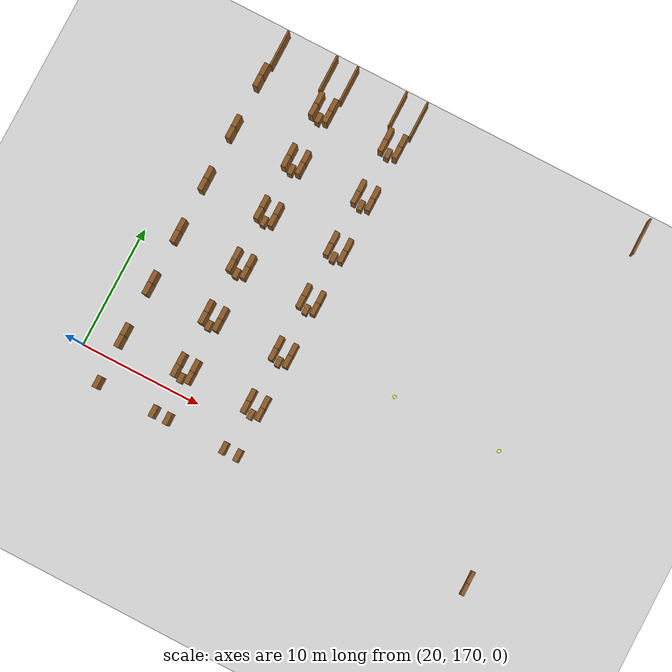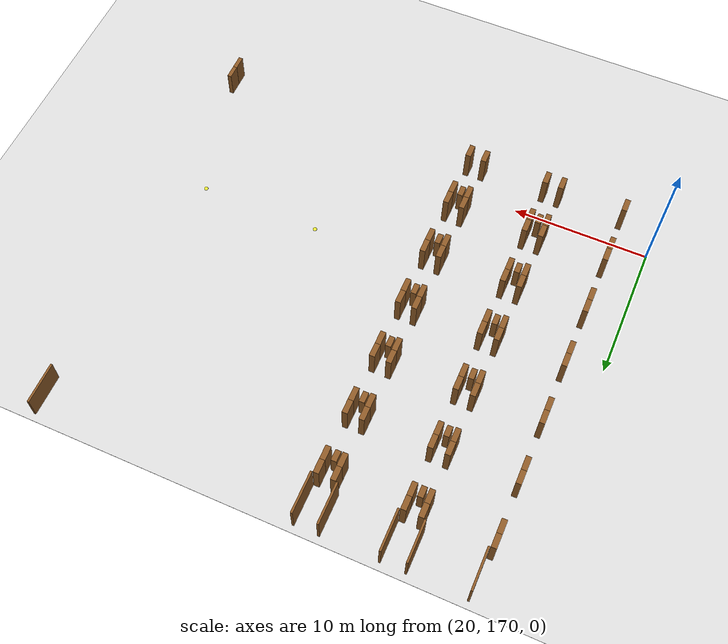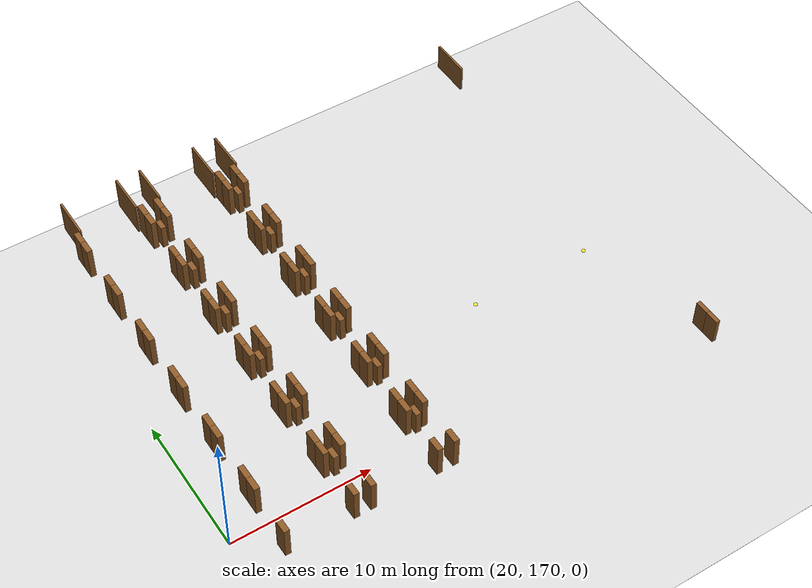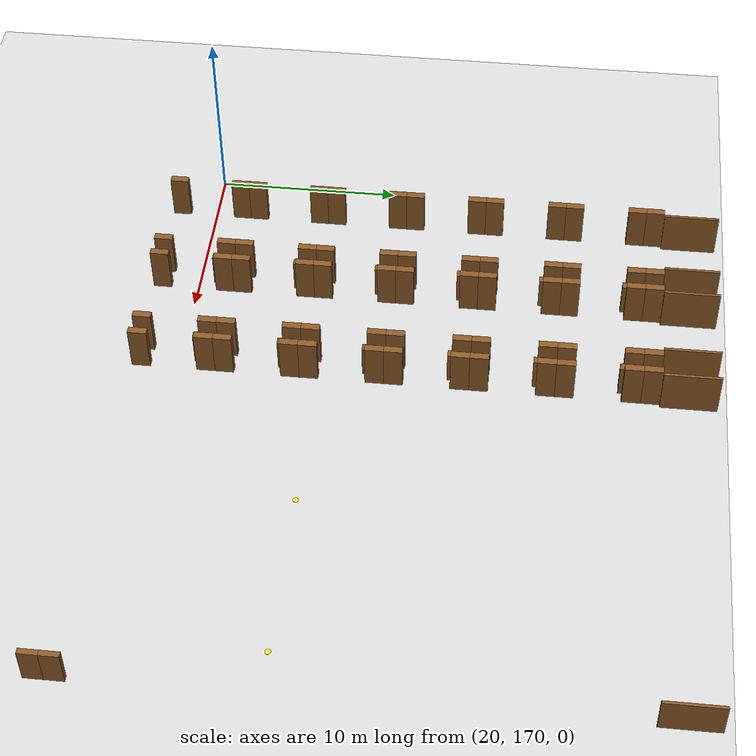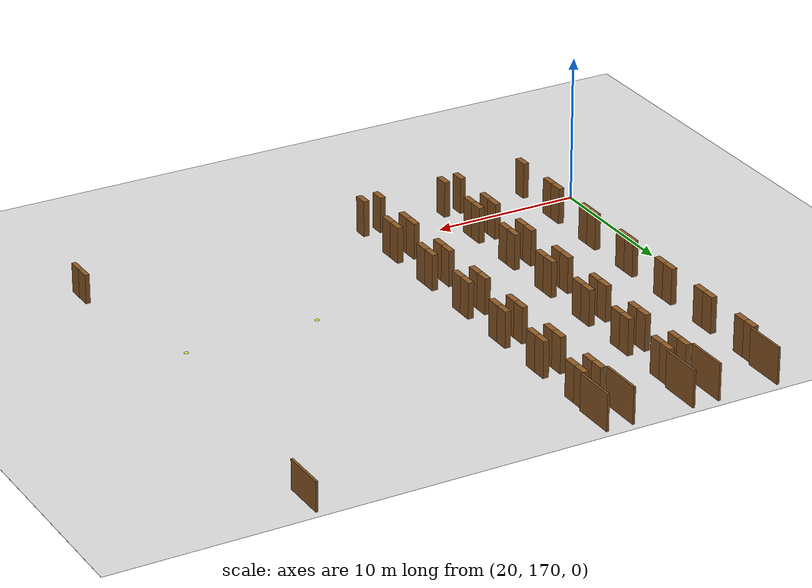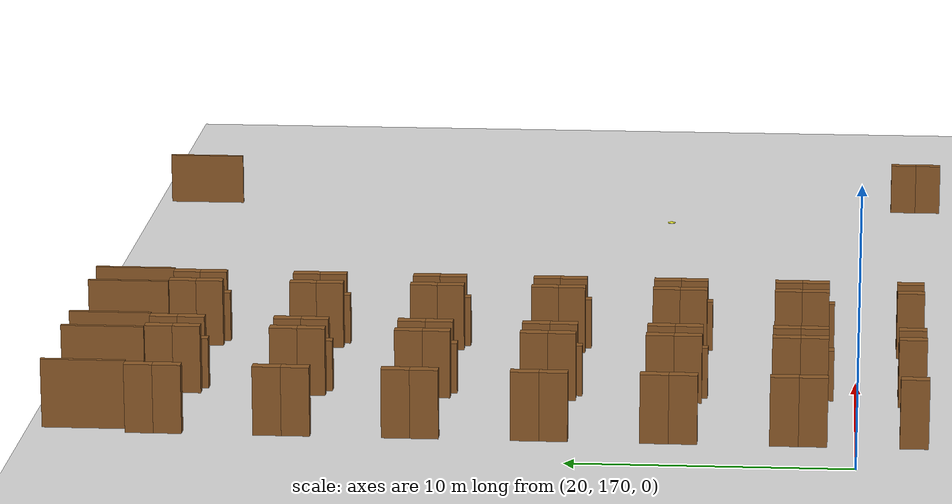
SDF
<sdf version="1.9">
 <world name="realistic_warehouse_150x200m">
  <model name="ground_plane">
   <static>true</static>
   <pose>68.5 102.0 0 0 0 0</pose>
   <link name="ground_link">
    <visual name="ground_visual">
     <geometry><box><size>127.0 194.0 0.01</size></box></geometry>
     <material><ambient>0.85 0.85 0.85 1.0</ambient><diffuse>0.85 0.85 0.85 1.0</diffuse></material>
    </visual>
    <collision name="ground_visual_collision">
     <geometry><box><size>127.0 194.0 0.01</size></box></geometry>
    </collision>
    <collision name="ground_collision">
     <geometry><plane><normal>0 0 1</normal><size>127.0 194.0</size></plane></geometry>
    </collision>
   </link>
  </model>
  <model name="rack_Zone_A_A2_S1_104">
   <static>true</static>
   <pose>22.6 168.0 1.25 0 0 0</pose>
   <link name="rack_Zone_A_A2_S1_104_link">
    <visual name="rack_Zone_A_A2_S1_104_vis">
     <geometry><box><size>0.4 1.0 2.5</size></box></geometry>
     <material><ambient>0.55 0.35 0.15 1.0</ambient><diffuse>0.55 0.35 0.15 1.0</diffuse></material>
    </visual>
    <collision name="rack_Zone_A_A2_S1_104_vis_collision">
     <geometry><box><size>0.4 1.0 2.5</size></box></geometry>
    </collision>
   </link>
  </model>
  <model name="rack_Zone_A_A2_S2_108">
   <static>true</static>
   <pose>22.6 171.5 1.25 0 0 0</pose>
   <link name="rack_Zone_A_A2_S2_108_link">
    <visual name="rack_Zone_A_A2_S2_108_vis">
     <geometry><box><size>0.4 1.0 2.5</size></box></geometry>
     <material><ambient>0.55 0.35 0.15 1.0</ambient><diffuse>0.55 0.35 0.15 1.0</diffuse></material>
    </visual>
    <collision name="rack_Zone_A_A2_S2_108_vis_collision">
     <geometry><box><size>0.4 1.0 2.5</size></box></geometry>
    </collision>
   </link>
  </model>
  <model name="rack_Zone_A_A2_S2_109">
   <static>true</static>
   <pose>22.6 172.5 1.25 0 0 0</pose>
   <link name="rack_Zone_A_A2_S2_109_link">
    <visual name="rack_Zone_A_A2_S2_109_vis">
     <geometry><box><size>0.4 1.0 2.5</size></box></geometry>
     <material><ambient>0.55 0.35 0.15 1.0</ambient><diffuse>0.55 0.35 0.15 1.0</diffuse></material>
    </visual>
    <collision name="rack_Zone_A_A2_S2_109_vis_collision">
     <geometry><box><size>0.4 1.0 2.5</size></box></geometry>
    </collision>
   </link>
  </model>
  <model name="rack_Zone_A_A2_S3_113">
   <static>true</static>
   <pose>22.6 176.0 1.25 0 0 0</pose>
   <link name="rack_Zone_A_A2_S3_113_link">
    <visual name="rack_Zone_A_A2_S3_113_vis">
     <geometry><box><size>0.4 1.0 2.5</size></box></geometry>
     <material><ambient>0.55 0.35 0.15 1.0</ambient><diffuse>0.55 0.35 0.15 1.0</diffuse></material>
    </visual>
    <collision name="rack_Zone_A_A2_S3_113_vis_collision">
     <geometry><box><size>0.4 1.0 2.5</size></box></geometry>
    </collision>
   </link>
  </model>
  <model name="rack_Zone_A_A2_S3_114">
   <static>true</static>
   <pose>22.6 177.0 1.25 0 0 0</pose>
   <link name="rack_Zone_A_A2_S3_114_link">
    <visual name="rack_Zone_A_A2_S3_114_vis">
     <geometry><box><size>0.4 1.0 2.5</size></box></geometry>
     <material><ambient>0.55 0.35 0.15 1.0</ambient><diffuse>0.55 0.35 0.15 1.0</diffuse></material>
    </visual>
    <collision name="rack_Zone_A_A2_S3_114_vis_collision">
     <geometry><box><size>0.4 1.0 2.5</size></box></geometry>
    </collision>
   </link>
  </model>
  <model name="rack_Zone_A_A2_S4_118">
   <static>true</static>
   <pose>22.6 180.5 1.25 0 0 0</pose>
   <link name="rack_Zone_A_A2_S4_118_link">
    <visual name="rack_Zone_A_A2_S4_118_vis">
     <geometry><box><size>0.4 1.0 2.5</size></box></geometry>
     <material><ambient>0.55 0.35 0.15 1.0</ambient><diffuse>0.55 0.35 0.15 1.0</diffuse></material>
    </visual>
    <collision name="rack_Zone_A_A2_S4_118_vis_collision">
     <geometry><box><size>0.4 1.0 2.5</size></box></geometry>
    </collision>
   </link>
  </model>
  <model name="rack_Zone_A_A2_S4_119">
   <static>true</static>
   <pose>22.6 181.5 1.25 0 0 0</pose>
   <link name="rack_Zone_A_A2_S4_119_link">
    <visual name="rack_Zone_A_A2_S4_119_vis">
     <geometry><box><size>0.4 1.0 2.5</size></box></geometry>
     <material><ambient>0.55 0.35 0.15 1.0</ambient><diffuse>0.55 0.35 0.15 1.0</diffuse></material>
    </visual>
    <collision name="rack_Zone_A_A2_S4_119_vis_collision">
     <geometry><box><size>0.4 1.0 2.5</size></box></geometry>
    </collision>
   </link>
  </model>
  <model name="rack_Zone_A_A2_S5_123">
   <static>true</static>
   <pose>22.6 185.0 1.25 0 0 0</pose>
   <link name="rack_Zone_A_A2_S5_123_link">
    <visual name="rack_Zone_A_A2_S5_123_vis">
     <geometry><box><size>0.4 1.0 2.5</size></box></geometry>
     <material><ambient>0.55 0.35 0.15 1.0</ambient><diffuse>0.55 0.35 0.15 1.0</diffuse></material>
    </visual>
    <collision name="rack_Zone_A_A2_S5_123_vis_collision">
     <geometry><box><size>0.4 1.0 2.5</size></box></geometry>
    </collision>
   </link>
  </model>
  <model name="rack_Zone_A_A2_S5_124">
   <static>true</static>
   <pose>22.6 186.0 1.25 0 0 0</pose>
   <link name="rack_Zone_A_A2_S5_124_link">
    <visual name="rack_Zone_A_A2_S5_124_vis">
     <geometry><box><size>0.4 1.0 2.5</size></box></geometry>
     <material><ambient>0.55 0.35 0.15 1.0</ambient><diffuse>0.55 0.35 0.15 1.0</diffuse></material>
    </visual>
    <collision name="rack_Zone_A_A2_S5_124_vis_collision">
     <geometry><box><size>0.4 1.0 2.5</size></box></geometry>
    </collision>
   </link>
  </model>
  <model name="rack_Zone_A_A2_S6_128">
   <static>true</static>
   <pose>22.6 189.5 1.25 0 0 0</pose>
   <link name="rack_Zone_A_A2_S6_128_link">
    <visual name="rack_Zone_A_A2_S6_128_vis">
     <geometry><box><size>0.4 1.0 2.5</size></box></geometry>
     <material><ambient>0.55 0.35 0.15 1.0</ambient><diffuse>0.55 0.35 0.15 1.0</diffuse></material>
    </visual>
    <collision name="rack_Zone_A_A2_S6_128_vis_collision">
     <geometry><box><size>0.4 1.0 2.5</size></box></geometry>
    </collision>
   </link>
  </model>
  <model name="rack_Zone_A_A2_S6_129">
   <static>true</static>
   <pose>22.6 190.5 1.25 0 0 0</pose>
   <link name="rack_Zone_A_A2_S6_129_link">
    <visual name="rack_Zone_A_A2_S6_129_vis">
     <geometry><box><size>0.4 1.0 2.5</size></box></geometry>
     <material><ambient>0.55 0.35 0.15 1.0</ambient><diffuse>0.55 0.35 0.15 1.0</diffuse></material>
    </visual>
    <collision name="rack_Zone_A_A2_S6_129_vis_collision">
     <geometry><box><size>0.4 1.0 2.5</size></box></geometry>
    </collision>
   </link>
  </model>
  <model name="rack_Zone_A_A2_S7_133">
   <static>true</static>
   <pose>22.6 194.0 1.25 0 0 0</pose>
   <link name="rack_Zone_A_A2_S7_133_link">
    <visual name="rack_Zone_A_A2_S7_133_vis">
     <geometry><box><size>0.4 1.0 2.5</size></box></geometry>
     <material><ambient>0.55 0.35 0.15 1.0</ambient><diffuse>0.55 0.35 0.15 1.0</diffuse></material>
    </visual>
    <collision name="rack_Zone_A_A2_S7_133_vis_collision">
     <geometry><box><size>0.4 1.0 2.5</size></box></geometry>
    </collision>
   </link>
  </model>
  <model name="rack_Zone_A_A2_S7_134">
   <static>true</static>
   <pose>22.6 195.0 1.25 0 0 0</pose>
   <link name="rack_Zone_A_A2_S7_134_link">
    <visual name="rack_Zone_A_A2_S7_134_vis">
     <geometry><box><size>0.4 1.0 2.5</size></box></geometry>
     <material><ambient>0.55 0.35 0.15 1.0</ambient><diffuse>0.55 0.35 0.15 1.0</diffuse></material>
    </visual>
    <collision name="rack_Zone_A_A2_S7_134_vis_collision">
     <geometry><box><size>0.4 1.0 2.5</size></box></geometry>
    </collision>
   </link>
  </model>
  <model name="aisle_R_Zone_A_A2_exit_137">
   <static>true</static>
   <pose>22.9 197.0 1.25 0 0 0</pose>
   <link name="aisle_R_Zone_A_A2_exit_137_link">
    <visual name="aisle_R_Zone_A_A2_exit_137_vis">
     <geometry><box><size>0.15 3.0 2.5</size></box></geometry>
     <material><ambient>0.55 0.35 0.15 1.0</ambient><diffuse>0.55 0.35 0.15 1.0</diffuse></material>
    </visual>
    <collision name="aisle_R_Zone_A_A2_exit_137_vis_collision">
     <geometry><box><size>0.15 3.0 2.5</size></box></geometry>
    </collision>
   </link>
  </model>
  <model name="rack_Zone_A_A3_S1_146">
   <static>true</static>
   <pose>27.4 168.0 1.25 0 0 0</pose>
   <link name="rack_Zone_A_A3_S1_146_link">
    <visual name="rack_Zone_A_A3_S1_146_vis">
     <geometry><box><size>0.4 1.0 2.5</size></box></geometry>
     <material><ambient>0.55 0.35 0.15 1.0</ambient><diffuse>0.55 0.35 0.15 1.0</diffuse></material>
    </visual>
    <collision name="rack_Zone_A_A3_S1_146_vis_collision">
     <geometry><box><size>0.4 1.0 2.5</size></box></geometry>
    </collision>
   </link>
  </model>
  <model name="rack_Zone_A_A3_S1_148">
   <static>true</static>
   <pose>28.6 168.0 1.25 0 0 0</pose>
   <link name="rack_Zone_A_A3_S1_148_link">
    <visual name="rack_Zone_A_A3_S1_148_vis">
     <geometry><box><size>0.4 1.0 2.5</size></box></geometry>
     <material><ambient>0.55 0.35 0.15 1.0</ambient><diffuse>0.55 0.35 0.15 1.0</diffuse></material>
    </visual>
    <collision name="rack_Zone_A_A3_S1_148_vis_collision">
     <geometry><box><size>0.4 1.0 2.5</size></box></geometry>
    </collision>
   </link>
  </model>
  <model name="rack_Zone_A_A3_S2_150">
   <static>true</static>
   <pose>27.4 171.5 1.25 0 0 0</pose>
   <link name="rack_Zone_A_A3_S2_150_link">
    <visual name="rack_Zone_A_A3_S2_150_vis">
     <geometry><box><size>0.4 1.0 2.5</size></box></geometry>
     <material><ambient>0.55 0.35 0.15 1.0</ambient><diffuse>0.55 0.35 0.15 1.0</diffuse></material>
    </visual>
    <collision name="rack_Zone_A_A3_S2_150_vis_collision">
     <geometry><box><size>0.4 1.0 2.5</size></box></geometry>
    </collision>
   </link>
  </model>
  <model name="rack_Zone_A_A3_S2_151">
   <static>true</static>
   <pose>27.4 172.5 1.25 0 0 0</pose>
   <link name="rack_Zone_A_A3_S2_151_link">
    <visual name="rack_Zone_A_A3_S2_151_vis">
     <geometry><box><size>0.4 1.0 2.5</size></box></geometry>
     <material><ambient>0.55 0.35 0.15 1.0</ambient><diffuse>0.55 0.35 0.15 1.0</diffuse></material>
    </visual>
    <collision name="rack_Zone_A_A3_S2_151_vis_collision">
     <geometry><box><size>0.4 1.0 2.5</size></box></geometry>
    </collision>
   </link>
  </model>
  <model name="rack_Zone_A_A3_S2_152">
   <static>true</static>
   <pose>28.6 171.5 1.25 0 0 0</pose>
   <link name="rack_Zone_A_A3_S2_152_link">
    <visual name="rack_Zone_A_A3_S2_152_vis">
     <geometry><box><size>0.4 1.0 2.5</size></box></geometry>
     <material><ambient>0.55 0.35 0.15 1.0</ambient><diffuse>0.55 0.35 0.15 1.0</diffuse></material>
    </visual>
    <collision name="rack_Zone_A_A3_S2_152_vis_collision">
     <geometry><box><size>0.4 1.0 2.5</size></box></geometry>
    </collision>
   </link>
  </model>
  <model name="rack_Zone_A_A3_S2_153">
   <static>true</static>
   <pose>28.6 172.5 1.25 0 0 0</pose>
   <link name="rack_Zone_A_A3_S2_153_link">
    <visual name="rack_Zone_A_A3_S2_153_vis">
     <geometry><box><size>0.4 1.0 2.5</size></box></geometry>
     <material><ambient>0.55 0.35 0.15 1.0</ambient><diffuse>0.55 0.35 0.15 1.0</diffuse></material>
    </visual>
    <collision name="rack_Zone_A_A3_S2_153_vis_collision">
     <geometry><box><size>0.4 1.0 2.5</size></box></geometry>
    </collision>
   </link>
  </model>
  <model name="rack_Zone_A_A3_S2_154">
   <static>true</static>
   <pose>28.0 171.2 0.9375 0 0 0</pose>
   <link name="rack_Zone_A_A3_S2_154_link">
    <visual name="rack_Zone_A_A3_S2_154_vis">
     <geometry><box><size>0.4 0.8 1.875</size></box></geometry>
     <material><ambient>0.55 0.35 0.15 1.0</ambient><diffuse>0.55 0.35 0.15 1.0</diffuse></material>
    </visual>
    <collision name="rack_Zone_A_A3_S2_154_vis_collision">
     <geometry><box><size>0.4 0.8 1.875</size></box></geometry>
    </collision>
   </link>
  </model>
  <model name="rack_Zone_A_A3_S3_155">
   <static>true</static>
   <pose>27.4 176.0 1.25 0 0 0</pose>
   <link name="rack_Zone_A_A3_S3_155_link">
    <visual name="rack_Zone_A_A3_S3_155_vis">
     <geometry><box><size>0.4 1.0 2.5</size></box></geometry>
     <material><ambient>0.55 0.35 0.15 1.0</ambient><diffuse>0.55 0.35 0.15 1.0</diffuse></material>
    </visual>
    <collision name="rack_Zone_A_A3_S3_155_vis_collision">
     <geometry><box><size>0.4 1.0 2.5</size></box></geometry>
    </collision>
   </link>
  </model>
  <model name="rack_Zone_A_A3_S3_156">
   <static>true</static>
   <pose>27.4 177.0 1.25 0 0 0</pose>
   <link name="rack_Zone_A_A3_S3_156_link">
    <visual name="rack_Zone_A_A3_S3_156_vis">
     <geometry><box><size>0.4 1.0 2.5</size></box></geometry>
     <material><ambient>0.55 0.35 0.15 1.0</ambient><diffuse>0.55 0.35 0.15 1.0</diffuse></material>
    </visual>
    <collision name="rack_Zone_A_A3_S3_156_vis_collision">
     <geometry><box><size>0.4 1.0 2.5</size></box></geometry>
    </collision>
   </link>
  </model>
  <model name="rack_Zone_A_A3_S3_157">
   <static>true</static>
   <pose>28.6 176.0 1.25 0 0 0</pose>
   <link name="rack_Zone_A_A3_S3_157_link">
    <visual name="rack_Zone_A_A3_S3_157_vis">
     <geometry><box><size>0.4 1.0 2.5</size></box></geometry>
     <material><ambient>0.55 0.35 0.15 1.0</ambient><diffuse>0.55 0.35 0.15 1.0</diffuse></material>
    </visual>
    <collision name="rack_Zone_A_A3_S3_157_vis_collision">
     <geometry><box><size>0.4 1.0 2.5</size></box></geometry>
    </collision>
   </link>
  </model>
  <model name="rack_Zone_A_A3_S3_158">
   <static>true</static>
   <pose>28.6 177.0 1.25 0 0 0</pose>
   <link name="rack_Zone_A_A3_S3_158_link">
    <visual name="rack_Zone_A_A3_S3_158_vis">
     <geometry><box><size>0.4 1.0 2.5</size></box></geometry>
     <material><ambient>0.55 0.35 0.15 1.0</ambient><diffuse>0.55 0.35 0.15 1.0</diffuse></material>
    </visual>
    <collision name="rack_Zone_A_A3_S3_158_vis_collision">
     <geometry><box><size>0.4 1.0 2.5</size></box></geometry>
    </collision>
   </link>
  </model>
  <model name="rack_Zone_A_A3_S3_159">
   <static>true</static>
   <pose>28.0 175.7 0.9375 0 0 0</pose>
   <link name="rack_Zone_A_A3_S3_159_link">
    <visual name="rack_Zone_A_A3_S3_159_vis">
     <geometry><box><size>0.4 0.8 1.875</size></box></geometry>
     <material><ambient>0.55 0.35 0.15 1.0</ambient><diffuse>0.55 0.35 0.15 1.0</diffuse></material>
    </visual>
    <collision name="rack_Zone_A_A3_S3_159_vis_collision">
     <geometry><box><size>0.4 0.8 1.875</size></box></geometry>
    </collision>
   </link>
  </model>
  <model name="rack_Zone_A_A3_S4_160">
   <static>true</static>
   <pose>27.4 180.5 1.25 0 0 0</pose>
   <link name="rack_Zone_A_A3_S4_160_link">
    <visual name="rack_Zone_A_A3_S4_160_vis">
     <geometry><box><size>0.4 1.0 2.5</size></box></geometry>
     <material><ambient>0.55 0.35 0.15 1.0</ambient><diffuse>0.55 0.35 0.15 1.0</diffuse></material>
    </visual>
    <collision name="rack_Zone_A_A3_S4_160_vis_collision">
     <geometry><box><size>0.4 1.0 2.5</size></box></geometry>
    </collision>
   </link>
  </model>
  <model name="rack_Zone_A_A3_S4_161">
   <static>true</static>
   <pose>27.4 181.5 1.25 0 0 0</pose>
   <link name="rack_Zone_A_A3_S4_161_link">
    <visual name="rack_Zone_A_A3_S4_161_vis">
     <geometry><box><size>0.4 1.0 2.5</size></box></geometry>
     <material><ambient>0.55 0.35 0.15 1.0</ambient><diffuse>0.55 0.35 0.15 1.0</diffuse></material>
    </visual>
    <collision name="rack_Zone_A_A3_S4_161_vis_collision">
     <geometry><box><size>0.4 1.0 2.5</size></box></geometry>
    </collision>
   </link>
  </model>
  <model name="rack_Zone_A_A3_S4_162">
   <static>true</static>
   <pose>28.6 180.5 1.25 0 0 0</pose>
   <link name="rack_Zone_A_A3_S4_162_link">
    <visual name="rack_Zone_A_A3_S4_162_vis">
     <geometry><box><size>0.4 1.0 2.5</size></box></geometry>
     <material><ambient>0.55 0.35 0.15 1.0</ambient><diffuse>0.55 0.35 0.15 1.0</diffuse></material>
    </visual>
    <collision name="rack_Zone_A_A3_S4_162_vis_collision">
     <geometry><box><size>0.4 1.0 2.5</size></box></geometry>
    </collision>
   </link>
  </model>
  <model name="rack_Zone_A_A3_S4_163">
   <static>true</static>
   <pose>28.6 181.5 1.25 0 0 0</pose>
   <link name="rack_Zone_A_A3_S4_163_link">
    <visual name="rack_Zone_A_A3_S4_163_vis">
     <geometry><box><size>0.4 1.0 2.5</size></box></geometry>
     <material><ambient>0.55 0.35 0.15 1.0</ambient><diffuse>0.55 0.35 0.15 1.0</diffuse></material>
    </visual>
    <collision name="rack_Zone_A_A3_S4_163_vis_collision">
     <geometry><box><size>0.4 1.0 2.5</size></box></geometry>
    </collision>
   </link>
  </model>
  <model name="rack_Zone_A_A3_S4_164">
   <static>true</static>
   <pose>28.0 180.2 0.9375 0 0 0</pose>
   <link name="rack_Zone_A_A3_S4_164_link">
    <visual name="rack_Zone_A_A3_S4_164_vis">
     <geometry><box><size>0.4 0.8 1.875</size></box></geometry>
     <material><ambient>0.55 0.35 0.15 1.0</ambient><diffuse>0.55 0.35 0.15 1.0</diffuse></material>
    </visual>
    <collision name="rack_Zone_A_A3_S4_164_vis_collision">
     <geometry><box><size>0.4 0.8 1.875</size></box></geometry>
    </collision>
   </link>
  </model>
  <model name="rack_Zone_A_A3_S5_165">
   <static>true</static>
   <pose>27.4 185.0 1.25 0 0 0</pose>
   <link name="rack_Zone_A_A3_S5_165_link">
    <visual name="rack_Zone_A_A3_S5_165_vis">
     <geometry><box><size>0.4 1.0 2.5</size></box></geometry>
     <material><ambient>0.55 0.35 0.15 1.0</ambient><diffuse>0.55 0.35 0.15 1.0</diffuse></material>
    </visual>
    <collision name="rack_Zone_A_A3_S5_165_vis_collision">
     <geometry><box><size>0.4 1.0 2.5</size></box></geometry>
    </collision>
   </link>
  </model>
  <model name="rack_Zone_A_A3_S5_166">
   <static>true</static>
   <pose>27.4 186.0 1.25 0 0 0</pose>
   <link name="rack_Zone_A_A3_S5_166_link">
    <visual name="rack_Zone_A_A3_S5_166_vis">
     <geometry><box><size>0.4 1.0 2.5</size></box></geometry>
     <material><ambient>0.55 0.35 0.15 1.0</ambient><diffuse>0.55 0.35 0.15 1.0</diffuse></material>
    </visual>
    <collision name="rack_Zone_A_A3_S5_166_vis_collision">
     <geometry><box><size>0.4 1.0 2.5</size></box></geometry>
    </collision>
   </link>
  </model>
  <model name="rack_Zone_A_A3_S5_167">
   <static>true</static>
   <pose>28.6 185.0 1.25 0 0 0</pose>
   <link name="rack_Zone_A_A3_S5_167_link">
    <visual name="rack_Zone_A_A3_S5_167_vis">
     <geometry><box><size>0.4 1.0 2.5</size></box></geometry>
     <material><ambient>0.55 0.35 0.15 1.0</ambient><diffuse>0.55 0.35 0.15 1.0</diffuse></material>
    </visual>
    <collision name="rack_Zone_A_A3_S5_167_vis_collision">
     <geometry><box><size>0.4 1.0 2.5</size></box></geometry>
    </collision>
   </link>
  </model>
  <model name="rack_Zone_A_A3_S5_168">
   <static>true</static>
   <pose>28.6 186.0 1.25 0 0 0</pose>
   <link name="rack_Zone_A_A3_S5_168_link">
    <visual name="rack_Zone_A_A3_S5_168_vis">
     <geometry><box><size>0.4 1.0 2.5</size></box></geometry>
     <material><ambient>0.55 0.35 0.15 1.0</ambient><diffuse>0.55 0.35 0.15 1.0</diffuse></material>
    </visual>
    <collision name="rack_Zone_A_A3_S5_168_vis_collision">
     <geometry><box><size>0.4 1.0 2.5</size></box></geometry>
    </collision>
   </link>
  </model>
  <model name="rack_Zone_A_A3_S5_169">
   <static>true</static>
   <pose>28.0 184.7 0.9375 0 0 0</pose>
   <link name="rack_Zone_A_A3_S5_169_link">
    <visual name="rack_Zone_A_A3_S5_169_vis">
     <geometry><box><size>0.4 0.8 1.875</size></box></geometry>
     <material><ambient>0.55 0.35 0.15 1.0</ambient><diffuse>0.55 0.35 0.15 1.0</diffuse></material>
    </visual>
    <collision name="rack_Zone_A_A3_S5_169_vis_collision">
     <geometry><box><size>0.4 0.8 1.875</size></box></geometry>
    </collision>
   </link>
  </model>
  <model name="rack_Zone_A_A3_S6_170">
   <static>true</static>
   <pose>27.4 189.5 1.25 0 0 0</pose>
   <link name="rack_Zone_A_A3_S6_170_link">
    <visual name="rack_Zone_A_A3_S6_170_vis">
     <geometry><box><size>0.4 1.0 2.5</size></box></geometry>
     <material><ambient>0.55 0.35 0.15 1.0</ambient><diffuse>0.55 0.35 0.15 1.0</diffuse></material>
    </visual>
    <collision name="rack_Zone_A_A3_S6_170_vis_collision">
     <geometry><box><size>0.4 1.0 2.5</size></box></geometry>
    </collision>
   </link>
  </model>
  <model name="rack_Zone_A_A3_S6_171">
   <static>true</static>
   <pose>27.4 190.5 1.25 0 0 0</pose>
   <link name="rack_Zone_A_A3_S6_171_link">
    <visual name="rack_Zone_A_A3_S6_171_vis">
     <geometry><box><size>0.4 1.0 2.5</size></box></geometry>
     <material><ambient>0.55 0.35 0.15 1.0</ambient><diffuse>0.55 0.35 0.15 1.0</diffuse></material>
    </visual>
    <collision name="rack_Zone_A_A3_S6_171_vis_collision">
     <geometry><box><size>0.4 1.0 2.5</size></box></geometry>
    </collision>
   </link>
  </model>
  <model name="rack_Zone_A_A3_S6_172">
   <static>true</static>
   <pose>28.6 189.5 1.25 0 0 0</pose>
   <link name="rack_Zone_A_A3_S6_172_link">
    <visual name="rack_Zone_A_A3_S6_172_vis">
     <geometry><box><size>0.4 1.0 2.5</size></box></geometry>
     <material><ambient>0.55 0.35 0.15 1.0</ambient><diffuse>0.55 0.35 0.15 1.0</diffuse></material>
    </visual>
    <collision name="rack_Zone_A_A3_S6_172_vis_collision">
     <geometry><box><size>0.4 1.0 2.5</size></box></geometry>
    </collision>
   </link>
  </model>
  <model name="rack_Zone_A_A3_S6_173">
   <static>true</static>
   <pose>28.6 190.5 1.25 0 0 0</pose>
   <link name="rack_Zone_A_A3_S6_173_link">
    <visual name="rack_Zone_A_A3_S6_173_vis">
     <geometry><box><size>0.4 1.0 2.5</size></box></geometry>
     <material><ambient>0.55 0.35 0.15 1.0</ambient><diffuse>0.55 0.35 0.15 1.0</diffuse></material>
    </visual>
    <collision name="rack_Zone_A_A3_S6_173_vis_collision">
     <geometry><box><size>0.4 1.0 2.5</size></box></geometry>
    </collision>
   </link>
  </model>
  <model name="rack_Zone_A_A3_S6_174">
   <static>true</static>
   <pose>28.0 189.2 0.9375 0 0 0</pose>
   <link name="rack_Zone_A_A3_S6_174_link">
    <visual name="rack_Zone_A_A3_S6_174_vis">
     <geometry><box><size>0.4 0.8 1.875</size></box></geometry>
     <material><ambient>0.55 0.35 0.15 1.0</ambient><diffuse>0.55 0.35 0.15 1.0</diffuse></material>
    </visual>
    <collision name="rack_Zone_A_A3_S6_174_vis_collision">
     <geometry><box><size>0.4 0.8 1.875</size></box></geometry>
    </collision>
   </link>
  </model>
  <model name="rack_Zone_A_A3_S7_175">
   <static>true</static>
   <pose>27.4 194.0 1.25 0 0 0</pose>
   <link name="rack_Zone_A_A3_S7_175_link">
    <visual name="rack_Zone_A_A3_S7_175_vis">
     <geometry><box><size>0.4 1.0 2.5</size></box></geometry>
     <material><ambient>0.55 0.35 0.15 1.0</ambient><diffuse>0.55 0.35 0.15 1.0</diffuse></material>
    </visual>
    <collision name="rack_Zone_A_A3_S7_175_vis_collision">
     <geometry><box><size>0.4 1.0 2.5</size></box></geometry>
    </collision>
   </link>
  </model>
  <model name="rack_Zone_A_A3_S7_176">
   <static>true</static>
   <pose>27.4 195.0 1.25 0 0 0</pose>
   <link name="rack_Zone_A_A3_S7_176_link">
    <visual name="rack_Zone_A_A3_S7_176_vis">
     <geometry><box><size>0.4 1.0 2.5</size></box></geometry>
     <material><ambient>0.55 0.35 0.15 1.0</ambient><diffuse>0.55 0.35 0.15 1.0</diffuse></material>
    </visual>
    <collision name="rack_Zone_A_A3_S7_176_vis_collision">
     <geometry><box><size>0.4 1.0 2.5</size></box></geometry>
    </collision>
   </link>
  </model>
  <model name="rack_Zone_A_A3_S7_177">
   <static>true</static>
   <pose>28.6 194.0 1.25 0 0 0</pose>
   <link name="rack_Zone_A_A3_S7_177_link">
    <visual name="rack_Zone_A_A3_S7_177_vis">
     <geometry><box><size>0.4 1.0 2.5</size></box></geometry>
     <material><ambient>0.55 0.35 0.15 1.0</ambient><diffuse>0.55 0.35 0.15 1.0</diffuse></material>
    </visual>
    <collision name="rack_Zone_A_A3_S7_177_vis_collision">
     <geometry><box><size>0.4 1.0 2.5</size></box></geometry>
    </collision>
   </link>
  </model>
  <model name="rack_Zone_A_A3_S7_178">
   <static>true</static>
   <pose>28.6 195.0 1.25 0 0 0</pose>
   <link name="rack_Zone_A_A3_S7_178_link">
    <visual name="rack_Zone_A_A3_S7_178_vis">
     <geometry><box><size>0.4 1.0 2.5</size></box></geometry>
     <material><ambient>0.55 0.35 0.15 1.0</ambient><diffuse>0.55 0.35 0.15 1.0</diffuse></material>
    </visual>
    <collision name="rack_Zone_A_A3_S7_178_vis_collision">
     <geometry><box><size>0.4 1.0 2.5</size></box></geometry>
    </collision>
   </link>
  </model>
  <model name="rack_Zone_A_A3_S7_179">
   <static>true</static>
   <pose>28.0 193.7 0.9375 0 0 0</pose>
   <link name="rack_Zone_A_A3_S7_179_link">
    <visual name="rack_Zone_A_A3_S7_179_vis">
     <geometry><box><size>0.4 0.8 1.875</size></box></geometry>
     <material><ambient>0.55 0.35 0.15 1.0</ambient><diffuse>0.55 0.35 0.15 1.0</diffuse></material>
    </visual>
    <collision name="rack_Zone_A_A3_S7_179_vis_collision">
     <geometry><box><size>0.4 0.8 1.875</size></box></geometry>
    </collision>
   </link>
  </model>
  <model name="aisle_L_Zone_A_A3_exit_180">
   <static>true</static>
   <pose>27.1 197.0 1.25 0 0 0</pose>
   <link name="aisle_L_Zone_A_A3_exit_180_link">
    <visual name="aisle_L_Zone_A_A3_exit_180_vis">
     <geometry><box><size>0.15 3.0 2.5</size></box></geometry>
     <material><ambient>0.55 0.35 0.15 1.0</ambient><diffuse>0.55 0.35 0.15 1.0</diffuse></material>
    </visual>
    <collision name="aisle_L_Zone_A_A3_exit_180_vis_collision">
     <geometry><box><size>0.15 3.0 2.5</size></box></geometry>
    </collision>
   </link>
  </model>
  <model name="aisle_R_Zone_A_A3_exit_181">
   <static>true</static>
   <pose>28.9 197.0 1.25 0 0 0</pose>
   <link name="aisle_R_Zone_A_A3_exit_181_link">
    <visual name="aisle_R_Zone_A_A3_exit_181_vis">
     <geometry><box><size>0.15 3.0 2.5</size></box></geometry>
     <material><ambient>0.55 0.35 0.15 1.0</ambient><diffuse>0.55 0.35 0.15 1.0</diffuse></material>
    </visual>
    <collision name="aisle_R_Zone_A_A3_exit_181_vis_collision">
     <geometry><box><size>0.15 3.0 2.5</size></box></geometry>
    </collision>
   </link>
  </model>
  <model name="rack_Zone_A_A4_S1_190">
   <static>true</static>
   <pose>33.4 168.0 1.25 0 0 0</pose>
   <link name="rack_Zone_A_A4_S1_190_link">
    <visual name="rack_Zone_A_A4_S1_190_vis">
     <geometry><box><size>0.4 1.0 2.5</size></box></geometry>
     <material><ambient>0.55 0.35 0.15 1.0</ambient><diffuse>0.55 0.35 0.15 1.0</diffuse></material>
    </visual>
    <collision name="rack_Zone_A_A4_S1_190_vis_collision">
     <geometry><box><size>0.4 1.0 2.5</size></box></geometry>
    </collision>
   </link>
  </model>
  <model name="rack_Zone_A_A4_S1_192">
   <static>true</static>
   <pose>34.6 168.0 1.25 0 0 0</pose>
   <link name="rack_Zone_A_A4_S1_192_link">
    <visual name="rack_Zone_A_A4_S1_192_vis">
     <geometry><box><size>0.4 1.0 2.5</size></box></geometry>
     <material><ambient>0.55 0.35 0.15 1.0</ambient><diffuse>0.55 0.35 0.15 1.0</diffuse></material>
    </visual>
    <collision name="rack_Zone_A_A4_S1_192_vis_collision">
     <geometry><box><size>0.4 1.0 2.5</size></box></geometry>
    </collision>
   </link>
  </model>
  <model name="rack_Zone_A_A4_S2_194">
   <static>true</static>
   <pose>33.4 171.5 1.25 0 0 0</pose>
   <link name="rack_Zone_A_A4_S2_194_link">
    <visual name="rack_Zone_A_A4_S2_194_vis">
     <geometry><box><size>0.4 1.0 2.5</size></box></geometry>
     <material><ambient>0.55 0.35 0.15 1.0</ambient><diffuse>0.55 0.35 0.15 1.0</diffuse></material>
    </visual>
    <collision name="rack_Zone_A_A4_S2_194_vis_collision">
     <geometry><box><size>0.4 1.0 2.5</size></box></geometry>
    </collision>
   </link>
  </model>
  <model name="rack_Zone_A_A4_S2_195">
   <static>true</static>
   <pose>33.4 172.5 1.25 0 0 0</pose>
   <link name="rack_Zone_A_A4_S2_195_link">
    <visual name="rack_Zone_A_A4_S2_195_vis">
     <geometry><box><size>0.4 1.0 2.5</size></box></geometry>
     <material><ambient>0.55 0.35 0.15 1.0</ambient><diffuse>0.55 0.35 0.15 1.0</diffuse></material>
    </visual>
    <collision name="rack_Zone_A_A4_S2_195_vis_collision">
     <geometry><box><size>0.4 1.0 2.5</size></box></geometry>
    </collision>
   </link>
  </model>
  <model name="rack_Zone_A_A4_S2_196">
   <static>true</static>
   <pose>34.6 171.5 1.25 0 0 0</pose>
   <link name="rack_Zone_A_A4_S2_196_link">
    <visual name="rack_Zone_A_A4_S2_196_vis">
     <geometry><box><size>0.4 1.0 2.5</size></box></geometry>
     <material><ambient>0.55 0.35 0.15 1.0</ambient><diffuse>0.55 0.35 0.15 1.0</diffuse></material>
    </visual>
    <collision name="rack_Zone_A_A4_S2_196_vis_collision">
     <geometry><box><size>0.4 1.0 2.5</size></box></geometry>
    </collision>
   </link>
  </model>
  <model name="rack_Zone_A_A4_S2_197">
   <static>true</static>
   <pose>34.6 172.5 1.25 0 0 0</pose>
   <link name="rack_Zone_A_A4_S2_197_link">
    <visual name="rack_Zone_A_A4_S2_197_vis">
     <geometry><box><size>0.4 1.0 2.5</size></box></geometry>
     <material><ambient>0.55 0.35 0.15 1.0</ambient><diffuse>0.55 0.35 0.15 1.0</diffuse></material>
    </visual>
    <collision name="rack_Zone_A_A4_S2_197_vis_collision">
     <geometry><box><size>0.4 1.0 2.5</size></box></geometry>
    </collision>
   </link>
  </model>
  <model name="rack_Zone_A_A4_S2_198">
   <static>true</static>
   <pose>34.0 171.2 0.9375 0 0 0</pose>
   <link name="rack_Zone_A_A4_S2_198_link">
    <visual name="rack_Zone_A_A4_S2_198_vis">
     <geometry><box><size>0.4 0.8 1.875</size></box></geometry>
     <material><ambient>0.55 0.35 0.15 1.0</ambient><diffuse>0.55 0.35 0.15 1.0</diffuse></material>
    </visual>
    <collision name="rack_Zone_A_A4_S2_198_vis_collision">
     <geometry><box><size>0.4 0.8 1.875</size></box></geometry>
    </collision>
   </link>
  </model>
  <model name="rack_Zone_A_A4_S3_199">
   <static>true</static>
   <pose>33.4 176.0 1.25 0 0 0</pose>
   <link name="rack_Zone_A_A4_S3_199_link">
    <visual name="rack_Zone_A_A4_S3_199_vis">
     <geometry><box><size>0.4 1.0 2.5</size></box></geometry>
     <material><ambient>0.55 0.35 0.15 1.0</ambient><diffuse>0.55 0.35 0.15 1.0</diffuse></material>
    </visual>
    <collision name="rack_Zone_A_A4_S3_199_vis_collision">
     <geometry><box><size>0.4 1.0 2.5</size></box></geometry>
    </collision>
   </link>
  </model>
  <model name="rack_Zone_A_A4_S3_200">
   <static>true</static>
   <pose>33.4 177.0 1.25 0 0 0</pose>
   <link name="rack_Zone_A_A4_S3_200_link">
    <visual name="rack_Zone_A_A4_S3_200_vis">
     <geometry><box><size>0.4 1.0 2.5</size></box></geometry>
     <material><ambient>0.55 0.35 0.15 1.0</ambient><diffuse>0.55 0.35 0.15 1.0</diffuse></material>
    </visual>
    <collision name="rack_Zone_A_A4_S3_200_vis_collision">
     <geometry><box><size>0.4 1.0 2.5</size></box></geometry>
    </collision>
   </link>
  </model>
  <model name="rack_Zone_A_A4_S3_201">
   <static>true</static>
   <pose>34.6 176.0 1.25 0 0 0</pose>
   <link name="rack_Zone_A_A4_S3_201_link">
    <visual name="rack_Zone_A_A4_S3_201_vis">
     <geometry><box><size>0.4 1.0 2.5</size></box></geometry>
     <material><ambient>0.55 0.35 0.15 1.0</ambient><diffuse>0.55 0.35 0.15 1.0</diffuse></material>
    </visual>
    <collision name="rack_Zone_A_A4_S3_201_vis_collision">
     <geometry><box><size>0.4 1.0 2.5</size></box></geometry>
    </collision>
   </link>
  </model>
  <model name="rack_Zone_A_A4_S3_202">
   <static>true</static>
   <pose>34.6 177.0 1.25 0 0 0</pose>
   <link name="rack_Zone_A_A4_S3_202_link">
    <visual name="rack_Zone_A_A4_S3_202_vis">
     <geometry><box><size>0.4 1.0 2.5</size></box></geometry>
     <material><ambient>0.55 0.35 0.15 1.0</ambient><diffuse>0.55 0.35 0.15 1.0</diffuse></material>
    </visual>
    <collision name="rack_Zone_A_A4_S3_202_vis_collision">
     <geometry><box><size>0.4 1.0 2.5</size></box></geometry>
    </collision>
   </link>
  </model>
  <model name="rack_Zone_A_A4_S3_203">
   <static>true</static>
   <pose>34.0 175.7 0.9375 0 0 0</pose>
   <link name="rack_Zone_A_A4_S3_203_link">
    <visual name="rack_Zone_A_A4_S3_203_vis">
     <geometry><box><size>0.4 0.8 1.875</size></box></geometry>
     <material><ambient>0.55 0.35 0.15 1.0</ambient><diffuse>0.55 0.35 0.15 1.0</diffuse></material>
    </visual>
    <collision name="rack_Zone_A_A4_S3_203_vis_collision">
     <geometry><box><size>0.4 0.8 1.875</size></box></geometry>
    </collision>
   </link>
  </model>
  <model name="rack_Zone_A_A4_S4_204">
   <static>true</static>
   <pose>33.4 180.5 1.25 0 0 0</pose>
   <link name="rack_Zone_A_A4_S4_204_link">
    <visual name="rack_Zone_A_A4_S4_204_vis">
     <geometry><box><size>0.4 1.0 2.5</size></box></geometry>
     <material><ambient>0.55 0.35 0.15 1.0</ambient><diffuse>0.55 0.35 0.15 1.0</diffuse></material>
    </visual>
    <collision name="rack_Zone_A_A4_S4_204_vis_collision">
     <geometry><box><size>0.4 1.0 2.5</size></box></geometry>
    </collision>
   </link>
  </model>
  <model name="rack_Zone_A_A4_S4_205">
   <static>true</static>
   <pose>33.4 181.5 1.25 0 0 0</pose>
   <link name="rack_Zone_A_A4_S4_205_link">
    <visual name="rack_Zone_A_A4_S4_205_vis">
     <geometry><box><size>0.4 1.0 2.5</size></box></geometry>
     <material><ambient>0.55 0.35 0.15 1.0</ambient><diffuse>0.55 0.35 0.15 1.0</diffuse></material>
    </visual>
    <collision name="rack_Zone_A_A4_S4_205_vis_collision">
     <geometry><box><size>0.4 1.0 2.5</size></box></geometry>
    </collision>
   </link>
  </model>
  <model name="rack_Zone_A_A4_S4_206">
   <static>true</static>
   <pose>34.6 180.5 1.25 0 0 0</pose>
   <link name="rack_Zone_A_A4_S4_206_link">
    <visual name="rack_Zone_A_A4_S4_206_vis">
     <geometry><box><size>0.4 1.0 2.5</size></box></geometry>
     <material><ambient>0.55 0.35 0.15 1.0</ambient><diffuse>0.55 0.35 0.15 1.0</diffuse></material>
    </visual>
    <collision name="rack_Zone_A_A4_S4_206_vis_collision">
     <geometry><box><size>0.4 1.0 2.5</size></box></geometry>
    </collision>
   </link>
  </model>
  <model name="rack_Zone_A_A4_S4_207">
   <static>true</static>
   <pose>34.6 181.5 1.25 0 0 0</pose>
   <link name="rack_Zone_A_A4_S4_207_link">
    <visual name="rack_Zone_A_A4_S4_207_vis">
     <geometry><box><size>0.4 1.0 2.5</size></box></geometry>
     <material><ambient>0.55 0.35 0.15 1.0</ambient><diffuse>0.55 0.35 0.15 1.0</diffuse></material>
    </visual>
    <collision name="rack_Zone_A_A4_S4_207_vis_collision">
     <geometry><box><size>0.4 1.0 2.5</size></box></geometry>
    </collision>
   </link>
  </model>
  <model name="rack_Zone_A_A4_S4_208">
   <static>true</static>
   <pose>34.0 180.2 0.9375 0 0 0</pose>
   <link name="rack_Zone_A_A4_S4_208_link">
    <visual name="rack_Zone_A_A4_S4_208_vis">
     <geometry><box><size>0.4 0.8 1.875</size></box></geometry>
     <material><ambient>0.55 0.35 0.15 1.0</ambient><diffuse>0.55 0.35 0.15 1.0</diffuse></material>
    </visual>
    <collision name="rack_Zone_A_A4_S4_208_vis_collision">
     <geometry><box><size>0.4 0.8 1.875</size></box></geometry>
    </collision>
   </link>
  </model>
  <model name="rack_Zone_A_A4_S5_209">
   <static>true</static>
   <pose>33.4 185.0 1.25 0 0 0</pose>
   <link name="rack_Zone_A_A4_S5_209_link">
    <visual name="rack_Zone_A_A4_S5_209_vis">
     <geometry><box><size>0.4 1.0 2.5</size></box></geometry>
     <material><ambient>0.55 0.35 0.15 1.0</ambient><diffuse>0.55 0.35 0.15 1.0</diffuse></material>
    </visual>
    <collision name="rack_Zone_A_A4_S5_209_vis_collision">
     <geometry><box><size>0.4 1.0 2.5</size></box></geometry>
    </collision>
   </link>
  </model>
  <model name="rack_Zone_A_A4_S5_210">
   <static>true</static>
   <pose>33.4 186.0 1.25 0 0 0</pose>
   <link name="rack_Zone_A_A4_S5_210_link">
    <visual name="rack_Zone_A_A4_S5_210_vis">
     <geometry><box><size>0.4 1.0 2.5</size></box></geometry>
     <material><ambient>0.55 0.35 0.15 1.0</ambient><diffuse>0.55 0.35 0.15 1.0</diffuse></material>
    </visual>
    <collision name="rack_Zone_A_A4_S5_210_vis_collision">
     <geometry><box><size>0.4 1.0 2.5</size></box></geometry>
    </collision>
   </link>
  </model>
  <model name="rack_Zone_A_A4_S5_211">
   <static>true</static>
   <pose>34.6 185.0 1.25 0 0 0</pose>
   <link name="rack_Zone_A_A4_S5_211_link">
    <visual name="rack_Zone_A_A4_S5_211_vis">
     <geometry><box><size>0.4 1.0 2.5</size></box></geometry>
     <material><ambient>0.55 0.35 0.15 1.0</ambient><diffuse>0.55 0.35 0.15 1.0</diffuse></material>
    </visual>
    <collision name="rack_Zone_A_A4_S5_211_vis_collision">
     <geometry><box><size>0.4 1.0 2.5</size></box></geometry>
    </collision>
   </link>
  </model>
  <model name="rack_Zone_A_A4_S5_212">
   <static>true</static>
   <pose>34.6 186.0 1.25 0 0 0</pose>
   <link name="rack_Zone_A_A4_S5_212_link">
    <visual name="rack_Zone_A_A4_S5_212_vis">
     <geometry><box><size>0.4 1.0 2.5</size></box></geometry>
     <material><ambient>0.55 0.35 0.15 1.0</ambient><diffuse>0.55 0.35 0.15 1.0</diffuse></material>
    </visual>
    <collision name="rack_Zone_A_A4_S5_212_vis_collision">
     <geometry><box><size>0.4 1.0 2.5</size></box></geometry>
    </collision>
   </link>
  </model>
  <model name="rack_Zone_A_A4_S5_213">
   <static>true</static>
   <pose>34.0 184.7 0.9375 0 0 0</pose>
   <link name="rack_Zone_A_A4_S5_213_link">
    <visual name="rack_Zone_A_A4_S5_213_vis">
     <geometry><box><size>0.4 0.8 1.875</size></box></geometry>
     <material><ambient>0.55 0.35 0.15 1.0</ambient><diffuse>0.55 0.35 0.15 1.0</diffuse></material>
    </visual>
    <collision name="rack_Zone_A_A4_S5_213_vis_collision">
     <geometry><box><size>0.4 0.8 1.875</size></box></geometry>
    </collision>
   </link>
  </model>
  <model name="rack_Zone_A_A4_S6_214">
   <static>true</static>
   <pose>33.4 189.5 1.25 0 0 0</pose>
   <link name="rack_Zone_A_A4_S6_214_link">
    <visual name="rack_Zone_A_A4_S6_214_vis">
     <geometry><box><size>0.4 1.0 2.5</size></box></geometry>
     <material><ambient>0.55 0.35 0.15 1.0</ambient><diffuse>0.55 0.35 0.15 1.0</diffuse></material>
    </visual>
    <collision name="rack_Zone_A_A4_S6_214_vis_collision">
     <geometry><box><size>0.4 1.0 2.5</size></box></geometry>
    </collision>
   </link>
  </model>
  <model name="rack_Zone_A_A4_S6_215">
   <static>true</static>
   <pose>33.4 190.5 1.25 0 0 0</pose>
   <link name="rack_Zone_A_A4_S6_215_link">
    <visual name="rack_Zone_A_A4_S6_215_vis">
     <geometry><box><size>0.4 1.0 2.5</size></box></geometry>
     <material><ambient>0.55 0.35 0.15 1.0</ambient><diffuse>0.55 0.35 0.15 1.0</diffuse></material>
    </visual>
    <collision name="rack_Zone_A_A4_S6_215_vis_collision">
     <geometry><box><size>0.4 1.0 2.5</size></box></geometry>
    </collision>
   </link>
  </model>
  <model name="rack_Zone_A_A4_S6_216">
   <static>true</static>
   <pose>34.6 189.5 1.25 0 0 0</pose>
   <link name="rack_Zone_A_A4_S6_216_link">
    <visual name="rack_Zone_A_A4_S6_216_vis">
     <geometry><box><size>0.4 1.0 2.5</size></box></geometry>
     <material><ambient>0.55 0.35 0.15 1.0</ambient><diffuse>0.55 0.35 0.15 1.0</diffuse></material>
    </visual>
    <collision name="rack_Zone_A_A4_S6_216_vis_collision">
     <geometry><box><size>0.4 1.0 2.5</size></box></geometry>
    </collision>
   </link>
  </model>
  <model name="rack_Zone_A_A4_S6_217">
   <static>true</static>
   <pose>34.6 190.5 1.25 0 0 0</pose>
   <link name="rack_Zone_A_A4_S6_217_link">
    <visual name="rack_Zone_A_A4_S6_217_vis">
     <geometry><box><size>0.4 1.0 2.5</size></box></geometry>
     <material><ambient>0.55 0.35 0.15 1.0</ambient><diffuse>0.55 0.35 0.15 1.0</diffuse></material>
    </visual>
    <collision name="rack_Zone_A_A4_S6_217_vis_collision">
     <geometry><box><size>0.4 1.0 2.5</size></box></geometry>
    </collision>
   </link>
  </model>
  <model name="rack_Zone_A_A4_S6_218">
   <static>true</static>
   <pose>34.0 189.2 0.9375 0 0 0</pose>
   <link name="rack_Zone_A_A4_S6_218_link">
    <visual name="rack_Zone_A_A4_S6_218_vis">
     <geometry><box><size>0.4 0.8 1.875</size></box></geometry>
     <material><ambient>0.55 0.35 0.15 1.0</ambient><diffuse>0.55 0.35 0.15 1.0</diffuse></material>
    </visual>
    <collision name="rack_Zone_A_A4_S6_218_vis_collision">
     <geometry><box><size>0.4 0.8 1.875</size></box></geometry>
    </collision>
   </link>
  </model>
  <model name="rack_Zone_A_A4_S7_219">
   <static>true</static>
   <pose>33.4 194.0 1.25 0 0 0</pose>
   <link name="rack_Zone_A_A4_S7_219_link">
    <visual name="rack_Zone_A_A4_S7_219_vis">
     <geometry><box><size>0.4 1.0 2.5</size></box></geometry>
     <material><ambient>0.55 0.35 0.15 1.0</ambient><diffuse>0.55 0.35 0.15 1.0</diffuse></material>
    </visual>
    <collision name="rack_Zone_A_A4_S7_219_vis_collision">
     <geometry><box><size>0.4 1.0 2.5</size></box></geometry>
    </collision>
   </link>
  </model>
  <model name="rack_Zone_A_A4_S7_220">
   <static>true</static>
   <pose>33.4 195.0 1.25 0 0 0</pose>
   <link name="rack_Zone_A_A4_S7_220_link">
    <visual name="rack_Zone_A_A4_S7_220_vis">
     <geometry><box><size>0.4 1.0 2.5</size></box></geometry>
     <material><ambient>0.55 0.35 0.15 1.0</ambient><diffuse>0.55 0.35 0.15 1.0</diffuse></material>
    </visual>
    <collision name="rack_Zone_A_A4_S7_220_vis_collision">
     <geometry><box><size>0.4 1.0 2.5</size></box></geometry>
    </collision>
   </link>
  </model>
  <model name="rack_Zone_A_A4_S7_221">
   <static>true</static>
   <pose>34.6 194.0 1.25 0 0 0</pose>
   <link name="rack_Zone_A_A4_S7_221_link">
    <visual name="rack_Zone_A_A4_S7_221_vis">
     <geometry><box><size>0.4 1.0 2.5</size></box></geometry>
     <material><ambient>0.55 0.35 0.15 1.0</ambient><diffuse>0.55 0.35 0.15 1.0</diffuse></material>
    </visual>
    <collision name="rack_Zone_A_A4_S7_221_vis_collision">
     <geometry><box><size>0.4 1.0 2.5</size></box></geometry>
    </collision>
   </link>
  </model>
  <model name="rack_Zone_A_A4_S7_222">
   <static>true</static>
   <pose>34.6 195.0 1.25 0 0 0</pose>
   <link name="rack_Zone_A_A4_S7_222_link">
    <visual name="rack_Zone_A_A4_S7_222_vis">
     <geometry><box><size>0.4 1.0 2.5</size></box></geometry>
     <material><ambient>0.55 0.35 0.15 1.0</ambient><diffuse>0.55 0.35 0.15 1.0</diffuse></material>
    </visual>
    <collision name="rack_Zone_A_A4_S7_222_vis_collision">
     <geometry><box><size>0.4 1.0 2.5</size></box></geometry>
    </collision>
   </link>
  </model>
  <model name="rack_Zone_A_A4_S7_223">
   <static>true</static>
   <pose>34.0 193.7 0.9375 0 0 0</pose>
   <link name="rack_Zone_A_A4_S7_223_link">
    <visual name="rack_Zone_A_A4_S7_223_vis">
     <geometry><box><size>0.4 0.8 1.875</size></box></geometry>
     <material><ambient>0.55 0.35 0.15 1.0</ambient><diffuse>0.55 0.35 0.15 1.0</diffuse></material>
    </visual>
    <collision name="rack_Zone_A_A4_S7_223_vis_collision">
     <geometry><box><size>0.4 0.8 1.875</size></box></geometry>
    </collision>
   </link>
  </model>
  <model name="aisle_L_Zone_A_A4_exit_224">
   <static>true</static>
   <pose>33.1 197.0 1.25 0 0 0</pose>
   <link name="aisle_L_Zone_A_A4_exit_224_link">
    <visual name="aisle_L_Zone_A_A4_exit_224_vis">
     <geometry><box><size>0.15 3.0 2.5</size></box></geometry>
     <material><ambient>0.55 0.35 0.15 1.0</ambient><diffuse>0.55 0.35 0.15 1.0</diffuse></material>
    </visual>
    <collision name="aisle_L_Zone_A_A4_exit_224_vis_collision">
     <geometry><box><size>0.15 3.0 2.5</size></box></geometry>
    </collision>
   </link>
  </model>
  <model name="aisle_R_Zone_A_A4_exit_225">
   <static>true</static>
   <pose>34.9 197.0 1.25 0 0 0</pose>
   <link name="aisle_R_Zone_A_A4_exit_225_link">
    <visual name="aisle_R_Zone_A_A4_exit_225_vis">
     <geometry><box><size>0.15 3.0 2.5</size></box></geometry>
     <material><ambient>0.55 0.35 0.15 1.0</ambient><diffuse>0.55 0.35 0.15 1.0</diffuse></material>
    </visual>
    <collision name="aisle_R_Zone_A_A4_exit_225_vis_collision">
     <geometry><box><size>0.15 3.0 2.5</size></box></geometry>
    </collision>
   </link>
  </model>
  <model name="rack_Zone_B_A0_S1_238">
   <static>true</static>
   <pose>54.4 167.0 1.0 0 0 0</pose>
   <link name="rack_Zone_B_A0_S1_238_link">
    <visual name="rack_Zone_B_A0_S1_238_vis">
     <geometry><box><size>0.3 1.0 2.0</size></box></geometry>
     <material><ambient>0.55 0.35 0.15 1.0</ambient><diffuse>0.55 0.35 0.15 1.0</diffuse></material>
    </visual>
    <collision name="rack_Zone_B_A0_S1_238_vis_collision">
     <geometry><box><size>0.3 1.0 2.0</size></box></geometry>
    </collision>
   </link>
  </model>
  <model name="rack_Zone_B_A0_S1_239">
   <static>true</static>
   <pose>54.4 168.0 1.0 0 0 0</pose>
   <link name="rack_Zone_B_A0_S1_239_link">
    <visual name="rack_Zone_B_A0_S1_239_vis">
     <geometry><box><size>0.3 1.0 2.0</size></box></geometry>
     <material><ambient>0.55 0.35 0.15 1.0</ambient><diffuse>0.55 0.35 0.15 1.0</diffuse></material>
    </visual>
    <collision name="rack_Zone_B_A0_S1_239_vis_collision">
     <geometry><box><size>0.3 1.0 2.0</size></box></geometry>
    </collision>
   </link>
  </model>
  <model name="aisle_L_Zone_B_A0_exit_273">
   <static>true</static>
   <pose>54.1 197.0 1.0 0 0 0</pose>
   <link name="aisle_L_Zone_B_A0_exit_273_link">
    <visual name="aisle_L_Zone_B_A0_exit_273_vis">
     <geometry><box><size>0.15 3.0 2.0</size></box></geometry>
     <material><ambient>0.55 0.35 0.15 1.0</ambient><diffuse>0.55 0.35 0.15 1.0</diffuse></material>
    </visual>
    <collision name="aisle_L_Zone_B_A0_exit_273_vis_collision">
     <geometry><box><size>0.15 3.0 2.0</size></box></geometry>
    </collision>
   </link>
  </model>
  <model name="cross_Zone_A_corridor_E_1608">
   <static>true</static>
   <pose>43.0 177.5 0.01 0 0 0</pose>
   <link name="cross_Zone_A_corridor_E_1608_link">
    <visual name="cross_Zone_A_corridor_E_1608_vis">
     <geometry><cylinder><radius>0.15</radius><length>0.02</length></cylinder></geometry>
     <material><ambient>0.9 0.9 0.2 1.0</ambient><diffuse>0.9 0.9 0.2 1.0</diffuse></material>
    </visual>
    <collision name="cross_Zone_A_corridor_E_1608_vis_collision">
     <geometry><cylinder><radius>0.15</radius><length>0.02</length></cylinder></geometry>
    </collision>
   </link>
  </model>
  <model name="cross_Zone_B_corridor_W_1609">
   <static>true</static>
   <pose>52.0 177.5 0.01 0 0 0</pose>
   <link name="cross_Zone_B_corridor_W_1609_link">
    <visual name="cross_Zone_B_corridor_W_1609_vis">
     <geometry><cylinder><radius>0.15</radius><length>0.02</length></cylinder></geometry>
     <material><ambient>0.9 0.9 0.2 1.0</ambient><diffuse>0.9 0.9 0.2 1.0</diffuse></material>
    </visual>
    <collision name="cross_Zone_B_corridor_W_1609_vis_collision">
     <geometry><cylinder><radius>0.15</radius><length>0.02</length></cylinder></geometry>
    </collision>
   </link>
  </model>
 </world>
</sdf>
